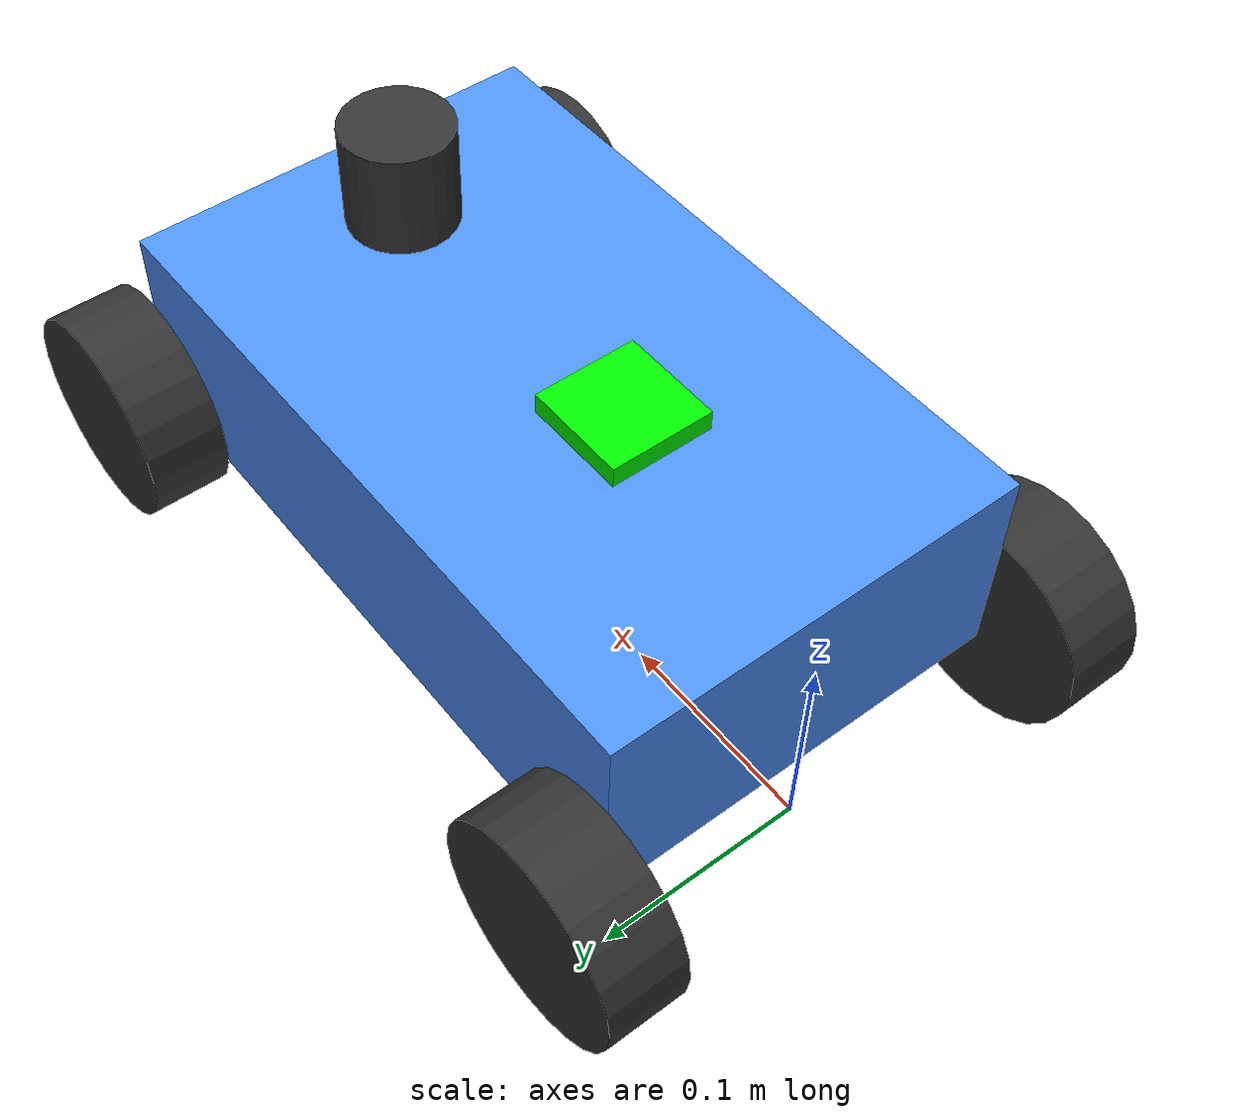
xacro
<?xml version="1.0"?>

<!-- A simple model of the racecar for rviz -->

<robot xmlns:xacro="http://www.ros.org/wiki/xacro" name="racecar">

  <xacro:property name="wheelbase" value="0.3302" />
  <xacro:property name="width" value="0.2032" />
  <xacro:property name="height" value="0.1" />
  <xacro:property name="ground_offset" value="0.04" />
  <xacro:property name="wheel_radius" value="0.0508" />
  <xacro:property name="wheel_length" value="0.0381" />
  <xacro:property name="laser_distance_from_base_link" value="0.275" />
  <xacro:property name="laser_height" value="0.05" />
  <xacro:property name="laser_radius" value="0.026" />
  <xacro:property name="car_name" value="senton" />

  <material name="black">
    <color rgba="0.2 0.2 0.2 1."/>
  </material>

  <material name="blue">
    <color rgba="0.3 0.57 1. 1."/>
  </material>

  <link name="${car_name}/base_link">
    <visual>
      <origin xyz="${wheelbase/2} 0 ${ground_offset+height/2}"/>
      <geometry>
        <box size="${wheelbase} ${width} ${height}"/>
      </geometry>
      <material name="blue"/>
    </visual>
  </link>

  <joint name="base_to_laser_model" type="fixed">
    <parent link="${car_name}/base_link"/>
    <child link="${car_name}/laser_model"/>
    <origin xyz="${laser_distance_from_base_link} 0 ${ground_offset+height+(laser_height/2)}"/>
  </joint>

  <link name="${car_name}/laser_model">
    <visual>
      <geometry>
        <cylinder radius="${laser_radius}" length="${laser_height}"/>
      </geometry>
      <material name="black"/>
    </visual>
  </link>

  <joint name="$base_to_back_left_wheel" type="fixed">
    <parent link="${car_name}/base_link"/>
    <child link="${car_name}/back_left_wheel"/>
    <origin xyz="0 ${(wheel_length+width)/2} ${wheel_radius}"/>
  </joint>

  <link name="${car_name}/back_left_wheel">
    <visual>
      <geometry>
        <cylinder radius="${wheel_radius}" length="${wheel_length}"/>
      </geometry>
      <material name="black"/>
      <origin rpy="${pi/2} 0 0"/>
    </visual>
  </link>

  <joint name="base_to_back_right_wheel" type="fixed">
    <parent link="${car_name}/base_link"/>
    <child link="${car_name}/back_right_wheel"/>
    <origin xyz="0 ${-(wheel_length+width)/2} ${wheel_radius}"/>
  </joint>

  <link name="${car_name}/back_right_wheel">
    <visual>
      <geometry>
        <cylinder radius="${wheel_radius}" length="${wheel_length}"/>
      </geometry>
      <material name="black"/>
      <origin rpy="${pi/2} 0 0"/>
    </visual>
  </link>

  <joint name="base_to_front_left_hinge" type="fixed">
    <parent link="${car_name}/base_link"/>
    <child link="${car_name}/front_left_hinge"/>
    <origin xyz="${wheelbase} ${(wheel_length+width)/2} ${wheel_radius}"/>
  </joint>

  <link name="${car_name}/front_left_hinge"/>

  <joint name="front_left_hinge_to_wheel" type="continuous">
    <parent link="${car_name}/front_left_hinge"/>
    <child link="${car_name}/front_left_wheel"/>
  </joint>

  <link name="${car_name}/front_left_wheel">
    <visual>
      <geometry>
        <cylinder radius="${wheel_radius}" length="${wheel_length}"/>
      </geometry>
      <material name="black"/>
      <origin rpy="${pi/2} 0 0"/>
    </visual>
  </link>

  <joint name="base_to_front_right_hinge" type="fixed">
    <parent link="${car_name}/base_link"/>
    <child link="${car_name}/front_right_hinge"/>
    <origin xyz="${wheelbase} ${-(wheel_length+width)/2} ${wheel_radius}"/>
  </joint>

  <link name="${car_name}/front_right_hinge"/>

  <joint name="front_right_hinge_to_wheel" type="continuous">
    <parent link="${car_name}/front_right_hinge"/>
    <child link="${car_name}/front_right_wheel"/>
  </joint>

  <link name="${car_name}/front_right_wheel">
    <visual>
      <geometry>
        <cylinder radius="${wheel_radius}" length="${wheel_length}"/>
      </geometry>
      <material name="black"/>
      <origin rpy="${pi/2} 0 0"/>
    </visual>
  </link>

   <!-- IMU joint -->
  <joint name="imu_joint" type="fixed">
    <axis xyz="0 1 0" />
    <origin xyz="0.12 0 0.125" rpy="0 0 0"/>
    <parent link="${car_name}/base_link"/>
    <child link="${car_name}/imu_link"/>
  </joint>

  <!-- IMU -->
  <link name="${car_name}/imu_link">
    <collision>
      <origin xyz="0 0 0" rpy="0 0 0"/>
      <geometry>
        <box size="0.05 0.05 0.05"/>
      </geometry>
    </collision>
    <visual>
      <origin xyz="0 0 0" rpy="0 0 0"/>
      <geometry>
        <box size="0.05 0.05 0.05"/>
      </geometry>
      <material name="green">
        <color rgba="0 1 0 1"/>
      </material>
    </visual>
    <inertial>
      <mass value="1e-2" />
      <origin xyz="0 0 0" rpy="0 0 0"/>
      <inertia ixx="1e-6" ixy="0" ixz="0" iyy="1e-6" iyz="0" izz="1e-6" />
    </inertial>
  </link>

   <!-- Gazebo插件设置相关 -->
  <gazebo reference="${car_name}/base_link">
    <material>Gazebo/Orange</material>
  </gazebo>
  <gazebo reference="${car_name}/front_right_wheel">
    <material>Gazebo/Red</material>
  </gazebo>
  <gazebo reference="${car_name}/front_left_wheel">
    <material>Gazebo/Black</material>
  </gazebo>
  <gazebo reference="${car_name}/back_right_wheel">
    <material>Gazebo/Red</material>
  </gazebo>
  <gazebo reference="${car_name}/back_left_wheel">
    <material>Gazebo/Black</material>
  </gazebo>
  <gazebo reference="${car_name}/imu_link">
    <material>Gazebo/BuildingFrame</material>
  </gazebo>

</robot>
